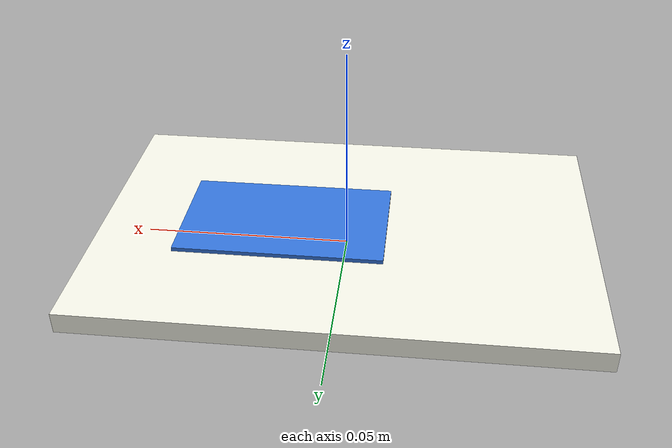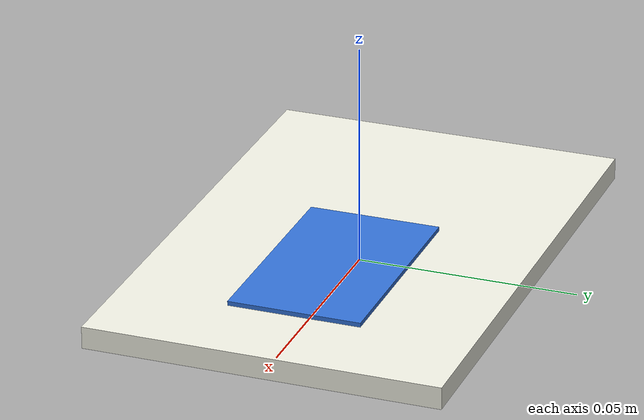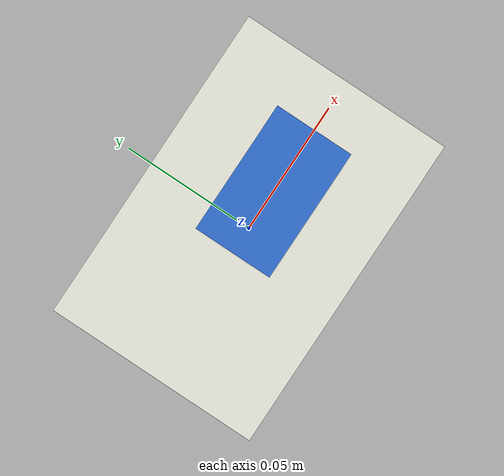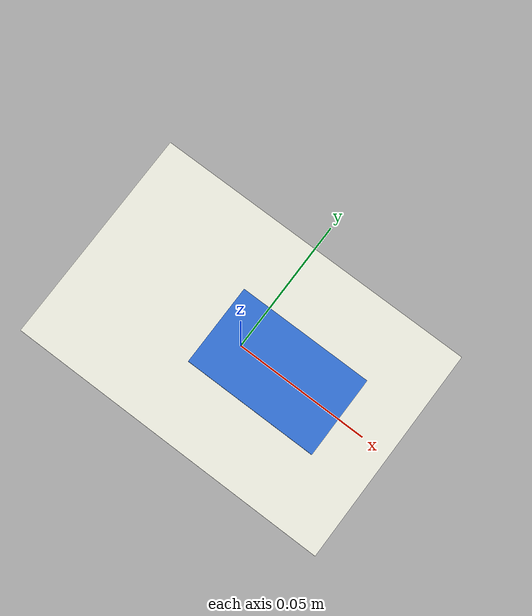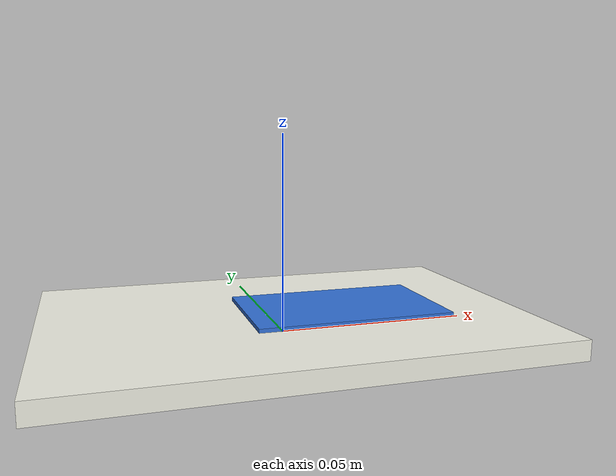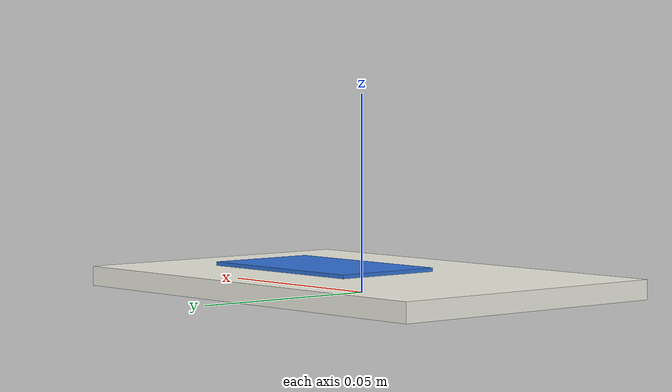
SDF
<sdf version="1.6">
  <model name="waste_paper">
    <pose>0 0 0 0 0 0</pose>
    <link name="body">
      <inertial>
        <mass>0.03</mass>
        <inertia>
          <ixx>0.00004</ixx>
          <iyy>0.00002</iyy>
          <izz>0.00005</izz>
          <ixy>0</ixy>
          <ixz>0</ixz>
          <iyz>0</iyz>
        </inertia>
      </inertial>

      <collision name="collision">
        <pose>0 0 0.0025 0 0 0</pose>
        <geometry>
          <box>
            <size>0.12 0.08 0.005</size>
          </box>
        </geometry>
        <surface>
          <friction>
            <ode>
              <mu>6.0</mu>
              <mu2>6.0</mu2>
            </ode>
          </friction>
        </surface>
      </collision>

      <visual name="visual_sheet">
        <pose>0 0 0.0025 0 0 0</pose>
        <geometry>
          <box>
            <size>0.12 0.08 0.005</size>
          </box>
        </geometry>
        <material>
          <ambient>0.95 0.95 0.90 1</ambient>
          <diffuse>0.95 0.95 0.90 1</diffuse>
          <specular>0.10 0.10 0.10 1</specular>
        </material>
      </visual>

      <visual name="visual_label">
        <pose>0.015 0 0.0055 0 0 0</pose>
        <geometry>
          <box>
            <size>0.05 0.03 0.001</size>
          </box>
        </geometry>
        <material>
          <ambient>0.20 0.45 0.85 1</ambient>
          <diffuse>0.20 0.45 0.85 1</diffuse>
        </material>
      </visual>
    </link>
  </model>
</sdf>
